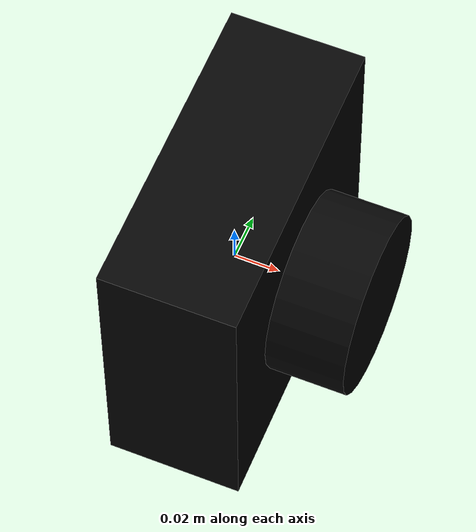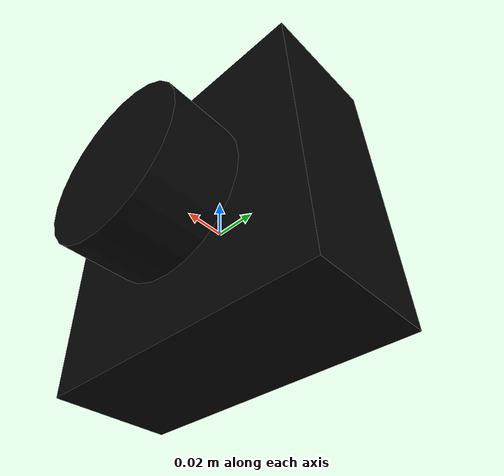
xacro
<?xml version="1.0"?>
<robot xmlns:xacro="http://www.ros.org/wiki/xacro" name="gazebo_static_camera">
  <xacro:arg name="model_name" default="gazebo_static_camera"/>
  <xacro:arg name="camera_link_frame" default="usb_cam_link"/>
  <xacro:arg name="optical_frame" default="usb_cam_optical_frame"/>
  <xacro:arg name="camera_profile" default="world_wide_4k30_110"/>
  <xacro:arg name="camera_profiles_file" default="../config/world_camera_profiles.yaml"/>
  <xacro:arg name="media_plugin_filename" default="libxgc_gazebo_media_camera.so"/>
  <xacro:arg name="media_source_id" default="usb_cam"/>
  <xacro:arg name="media_rtp_host" default="127.0.0.1"/>
  <xacro:arg name="media_control_endpoint" default=""/>
  <xacro:arg name="media_control_target_id" default=""/>
  <xacro:arg name="media_control_instance_id" default=""/>
  <xacro:arg name="snapshot_pose_frame_id" default="world"/>
  <xacro:arg name="publish_encoded_video" default="true"/>
  <xacro:arg name="encoded_video_topic" default="/xgc/camera/world/video_h264"/>
  <xacro:arg name="frame_timing_topic" default="/xgc/camera/world/frame_timing"/>
  <xacro:arg name="camera_info_topic" default="/xgc/camera/world/camera_info"/>
  <xacro:arg name="stream_info_topic" default="/xgc/camera/world/stream_info"/>
  <xacro:arg name="encoded_publisher_queue_capacity" default="8"/>
  <xacro:arg name="media_bitrate" default="profile"/>
  <xacro:arg name="media_max_bitrate" default="profile"/>
  <xacro:arg name="media_pacing_bitrate" default="profile"/>
  <xacro:arg name="media_vbv_buffer_milliseconds" default="profile"/>
  <xacro:arg name="snapshot_jpeg_quality" default="profile"/>
  <xacro:arg name="snapshot_jpeg_backend" default="auto"/>
  <xacro:arg name="width" default="profile"/>
  <xacro:arg name="height" default="profile"/>
  <xacro:arg name="fps" default="profile"/>
  <xacro:arg name="hfov_degrees" default="profile"/>
  <xacro:arg name="near_clip" default="profile"/>
  <xacro:arg name="far_clip" default="profile"/>
  <xacro:arg name="noise_stddev" default="profile"/>
  <xacro:arg name="static" default="true"/>

  <xacro:property name="profile_document"
                  value="${xacro.load_yaml(xacro.arg('camera_profiles_file'))}"/>
  <xacro:property name="profile_name" value="${xacro.arg('camera_profile')}"/>
  <xacro:property name="profile"
                  value="${profile_document['profiles'][profile_name]}"/>
  <xacro:property name="profile_image" value="${profile['image']}"/>
  <xacro:property name="profile_lens" value="${profile['lens']}"/>
  <xacro:property name="profile_encoder" value="${profile['encoder']}"/>
  <xacro:property name="profile_snapshot" value="${profile['snapshot']}"/>

  <xacro:property name="camera_width"
                  value="${int(profile_image['width_px']) if xacro.arg('width') == 'profile' else int(xacro.arg('width'))}"/>
  <xacro:property name="camera_height"
                  value="${int(profile_image['height_px']) if xacro.arg('height') == 'profile' else int(xacro.arg('height'))}"/>
  <xacro:property name="camera_fps"
                  value="${float(profile_image['frame_rate_hz']) if xacro.arg('fps') == 'profile' else float(xacro.arg('fps'))}"/>
  <xacro:property name="camera_hfov"
                  value="${radians(float(xacro.arg('hfov_degrees'))) if xacro.arg('hfov_degrees') != 'profile' else radians(float(profile_lens['horizontal_fov_degrees']))}"/>
  <xacro:property name="camera_near_clip"
                  value="${float(profile_lens['near_clip_m']) if xacro.arg('near_clip') == 'profile' else float(xacro.arg('near_clip'))}"/>
  <xacro:property name="camera_far_clip"
                  value="${float(profile_lens['far_clip_m']) if xacro.arg('far_clip') == 'profile' else float(xacro.arg('far_clip'))}"/>
  <xacro:property name="camera_noise_stddev"
                  value="${float(profile_lens['gaussian_noise_stddev']) if xacro.arg('noise_stddev') == 'profile' else float(xacro.arg('noise_stddev'))}"/>
  <xacro:property name="camera_media_bitrate"
                  value="${int(profile_encoder['average_bitrate_bps']) if xacro.arg('media_bitrate') == 'profile' else int(xacro.arg('media_bitrate'))}"/>
  <xacro:property name="camera_media_max_bitrate"
                  value="${int(profile_encoder['maximum_bitrate_bps']) if xacro.arg('media_max_bitrate') == 'profile' else int(xacro.arg('media_max_bitrate'))}"/>
  <xacro:property name="camera_media_pacing_bitrate"
                  value="${int(profile_encoder['pacing_bitrate_bps']) if xacro.arg('media_pacing_bitrate') == 'profile' else int(xacro.arg('media_pacing_bitrate'))}"/>
  <xacro:property name="camera_media_vbv_buffer_milliseconds"
                  value="${int(profile_encoder['vbv_buffer_ms']) if xacro.arg('media_vbv_buffer_milliseconds') == 'profile' else int(xacro.arg('media_vbv_buffer_milliseconds'))}"/>
  <xacro:property name="camera_snapshot_jpeg_quality"
                  value="${int(profile_snapshot['jpeg_quality']) if xacro.arg('snapshot_jpeg_quality') == 'profile' else int(xacro.arg('snapshot_jpeg_quality'))}"/>

  <!-- Compact black camera body: x is the optical/forward axis. -->
  <xacro:property name="body_depth" value="0.06"/>
  <xacro:property name="body_side" value="0.14"/>
  <xacro:property name="lens_length" value="0.035"/>
  <xacro:property name="lens_radius" value="0.04"/>
  <xacro:property name="lens_center_x" value="${(body_depth + lens_length) / 2.0}"/>
  <!-- Pinhole just past the black lens. A sensor at the link origin looks
       into Gazebo/Black; GCS object-fit:cover then crops the remaining
       scene ring into a black panel. -->
  <xacro:property name="optical_origin_x" value="${lens_center_x + lens_length / 2.0 + 0.002}"/>

  <link name="$(arg camera_link_frame)">
    <inertial>
      <mass value="0.2"/>
      <origin xyz="0 0 0"/>
      <inertia ixx="0.0004" ixy="0" ixz="0" iyy="0.0004" iyz="0" izz="0.0004"/>
    </inertial>
    <visual>
      <geometry><box size="${body_depth} ${body_side} ${body_side}"/></geometry>
      <material name="camera_black"><color rgba="0.02 0.02 0.02 1"/></material>
    </visual>
    <visual>
      <origin xyz="${lens_center_x} 0 0" rpy="0 ${pi/2} 0"/>
      <geometry><cylinder radius="${lens_radius}" length="${lens_length}"/></geometry>
      <material name="camera_black"/>
    </visual>
    <collision>
      <geometry><box size="${body_depth} ${body_side} ${body_side}"/></geometry>
    </collision>
    <collision>
      <origin xyz="${lens_center_x} 0 0" rpy="0 ${pi/2} 0"/>
      <geometry><cylinder radius="${lens_radius}" length="${lens_length}"/></geometry>
    </collision>
  </link>

  <link name="$(arg optical_frame)"/>
  <joint name="camera_link_to_optical" type="fixed">
    <parent link="$(arg camera_link_frame)"/>
    <child link="$(arg optical_frame)"/>
    <!-- REP-103: camera link x-forward/z-up to optical z-forward/x-right/y-down.
         Translate to the same pinhole as the Gazebo sensor pose. -->
    <origin xyz="${optical_origin_x} 0 0" rpy="${-pi/2} 0 ${-pi/2}"/>
  </joint>

  <xacro:if value="$(arg static)">
    <gazebo><static>true</static></gazebo>
  </xacro:if>
  <xacro:unless value="$(arg static)">
    <gazebo reference="$(arg camera_link_frame)"><gravity>false</gravity></gazebo>
  </xacro:unless>

  <gazebo reference="$(arg camera_link_frame)">
    <!-- Gazebo Classic does not reliably preserve URDF RGBA colors. -->
    <material>Gazebo/Black</material>
    <sensor name="rgb_camera" type="camera">
      <pose>${optical_origin_x} 0 0 0 0 0</pose>
      <always_on>true</always_on>
      <update_rate>${camera_fps}</update_rate>
      <visualize>false</visualize>
      <camera>
        <horizontal_fov>${camera_hfov}</horizontal_fov>
        <image>
          <width>${camera_width}</width>
          <height>${camera_height}</height>
          <format>R8G8B8</format>
        </image>
        <clip><near>${camera_near_clip}</near><far>${camera_far_clip}</far></clip>
        <noise><type>gaussian</type><mean>0.0</mean><stddev>${camera_noise_stddev}</stddev></noise>
      </camera>
      <plugin name="xgc_media_camera" filename="$(arg media_plugin_filename)">
        <sourceId>$(arg media_source_id)</sourceId>
        <frameId>$(arg optical_frame)</frameId>
        <rtpHost>$(arg media_rtp_host)</rtpHost>
        <rtpPort>$(arg media_rtp_port)</rtpPort>
        <controlEndpoint>$(arg media_control_endpoint)</controlEndpoint>
        <controlTargetId>$(arg media_control_target_id)</controlTargetId>
        <controlInstanceId>$(arg media_control_instance_id)</controlInstanceId>
        <snapshotPoseFrameId>$(arg snapshot_pose_frame_id)</snapshotPoseFrameId>
        <rosPublishEnabled>$(arg publish_encoded_video)</rosPublishEnabled>
        <rosVideoTopic>$(arg encoded_video_topic)</rosVideoTopic>
        <rosFrameTimingTopic>$(arg frame_timing_topic)</rosFrameTimingTopic>
        <rosCameraInfoTopic>$(arg camera_info_topic)</rosCameraInfoTopic>
        <rosStreamInfoTopic>$(arg stream_info_topic)</rosStreamInfoTopic>
        <rosPublisherQueueCapacity>$(arg encoded_publisher_queue_capacity)</rosPublisherQueueCapacity>
        <bitrate>${camera_media_bitrate}</bitrate>
        <maxBitrate>${camera_media_max_bitrate}</maxBitrate>
        <pacingBitrate>${camera_media_pacing_bitrate}</pacingBitrate>
        <vbvBufferMilliseconds>${camera_media_vbv_buffer_milliseconds}</vbvBufferMilliseconds>
        <jpegQuality>${camera_snapshot_jpeg_quality}</jpegQuality>
        <snapshotJpegBackend>$(arg snapshot_jpeg_backend)</snapshotJpegBackend>
      </plugin>
    </sensor>
  </gazebo>
</robot>
